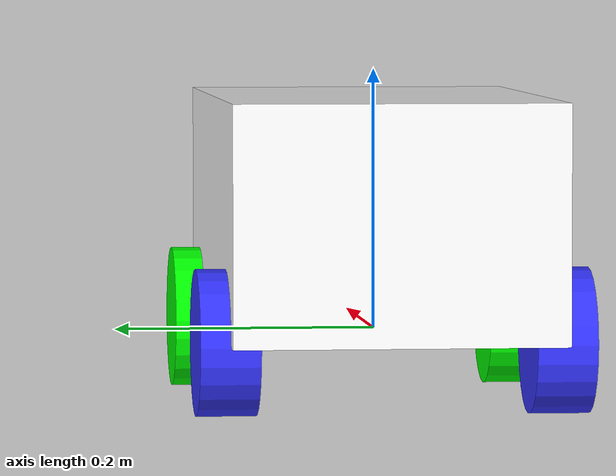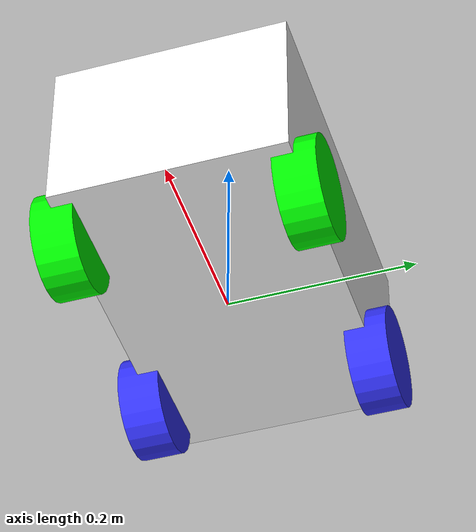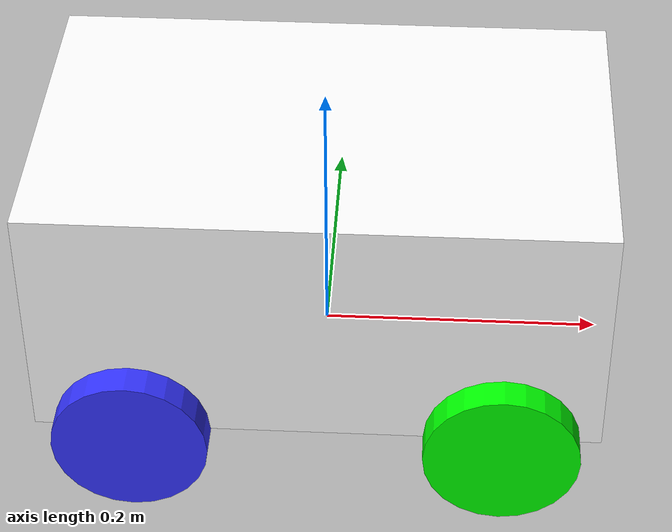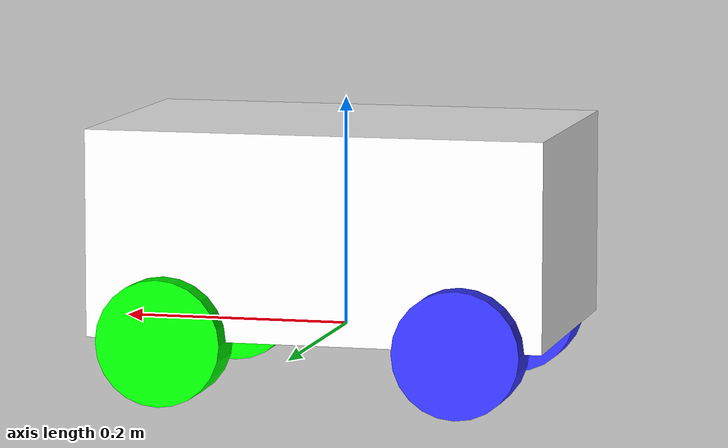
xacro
<?xml version="1.0"?>
<robot xmlns:xacro="http://www.ros.org/wiki/xacro" >

    <xacro:include filename="inertial_macros.xacro" />

    <material name="white">
        <color rgba="1 1 1 1" />
    </material>

    <material name="orange">
        <color rgba="1 0.3 0.1 1" />
    </material>

    <material name="blue">
        <color rgba="0.2 0.2 1 1" />
    </material>

    <material name="green">
        <color rgba="0 1 0 1" />
    </material>

    <material name="red">
        <color rgba="1 0 0 1" />
    </material>

    <material name="grey">
        <color rgba="0.5 0.5 0.5 1" />
    </material>

    <material name="black">
        <color rgba="0 0 0 1" />
    </material>

    <!-- BASE LINK  -->

    <link name="base_link">
        <static>true</static>
    </link>

    <!-- CHASSIS LINK -->

    <joint name="chassis_joint" type="fixed" >
        <parent link="base_link" />
        <child link="chassis" />
        <origin xyz="-0.2 0 0" />
    </joint>

    <link name="chassis">
        <visual>
            <origin xyz="0.2 0 0.09" />
            <geometry>
                <box size="0.4 0.25 0.18" />
            </geometry>
            <material name="white" />
        </visual>
        <collision>
            <origin xyz="0.2 0 0.09" />
            <geometry>
                <box size="0.4 0.25 0.18" />
            </geometry>
        </collision>
        <xacro:inertial_box mass="5" x="0.4" y="0.25" z="0.18" >
            <origin xyz="0.2 0.125 0.09" rpy="0 0 0" />
        </xacro:inertial_box>
    </link>

    <gazebo reference="chassis" >
        <material>Gazebo/White</material>
    </gazebo>

    <!-- LEFT FRONT WHEEL LINK -->

    <joint name="left_front_wheel_joint" type="continuous" >
        <parent link="base_link" />
        <child link="left_front_wheel" />
        <origin xyz="0.13 0.125 0" rpy="-${pi/2} 0 0" />
        <axis xyz="0 0 1" />
    </joint>

    <link name="left_front_wheel" >
        <visual>
            <geometry>
                <cylinder radius="0.055" length="0.045" />
            </geometry>
            <material name="green" />
        </visual>
        <collision>
            <geometry>
                <cylinder radius="0.055" length="0.045" />
            </geometry>
        </collision>
        <xacro:inertial_cylinder mass="0.1" length="0.045" radius="0.55" >
            <origin xyz="0 0 0" rpy="0 0 0" />
        </xacro:inertial_cylinder>
    </link>

    <gazebo reference="left_front_wheel" >
        <material>Gazebo/Green</material>
        <mu1 value="0.01" />
        <mu2 value="0.01" />
    </gazebo>

    <!-- LEFT BACK WHEEL LINK -->

    <joint name="left_back_wheel_joint" type="continuous" >
        <parent link="base_link" />
        <child link="left_back_wheel" />
        <origin xyz="-0.13 0.125 0" rpy="-${pi/2} 0 0" />
        <axis xyz="0 0 1" />
    </joint>

    <link name="left_back_wheel" >
        <visual>
            <geometry>
                <cylinder radius="0.055" length="0.045" />
            </geometry>
            <material name="blue" />
        </visual>
        <collision>
            <geometry>
                <cylinder radius="0.055" length="0.045" />
            </geometry>
        </collision>
        <xacro:inertial_cylinder mass="0.1" length="0.045" radius="0.55" >
            <origin xyz="0 0 0" rpy="0 0 0" />
        </xacro:inertial_cylinder>
    </link>

    <gazebo reference="left_back_wheel" >
        <material>Gazebo/Blue</material>
     </gazebo>

    <!-- RIGHT FRONT WHEEL LINK -->

    <joint name="right_front_wheel_joint" type="continuous" >
        <parent link="base_link" />
        <child link="right_front_wheel" />
        <origin xyz="0.13 -0.125 0" rpy="${pi/2} 0 0" />
        <axis xyz="0 0 -1" />
    </joint>

    <link name="right_front_wheel" >
        <visual>
            <geometry>
                <cylinder radius="0.055" length="0.045" />
            </geometry>
            <material name="green" />
        </visual>
        <collision>
            <geometry>
                <cylinder radius="0.055" length="0.045" />
            </geometry>
        </collision>
        <xacro:inertial_cylinder mass="0.1" length="0.045" radius="0.55" >
            <origin xyz="0 0 0" rpy="0 0 0" />
        </xacro:inertial_cylinder>
    </link>

    <gazebo reference="right_front_wheel" >
        <material>Gazebo/Green</material>
        <mu1 value="0.01" />
        <mu2 value="0.01" />
    </gazebo>

    <!-- RIGHT BACK WHEEL LINK -->

    <joint name="right_back_wheel_joint" type="continuous" >
        <parent link="base_link" />
        <child link="right_back_wheel" />
        <origin xyz="-0.13 -0.125 0" rpy="${pi/2} 0 0" />
        <axis xyz="0 0 -1" />
    </joint>

    <link name="right_back_wheel" >
        <visual>
            <geometry>
                <cylinder radius="0.055" length="0.045" />
            </geometry>
            <material name="blue" />
        </visual>
        <collision>
            <geometry>
                <cylinder radius="0.055" length="0.045" />
            </geometry>
        </collision>
        <xacro:inertial_cylinder mass="0.1" length="0.045" radius="0.55" >
            <origin xyz="0 0 0" rpy="0 0 0" />
        </xacro:inertial_cylinder>
    </link>

    <gazebo reference="right_back_wheel" >
        <material>Gazebo/Blue</material>
    </gazebo>

</robot>
